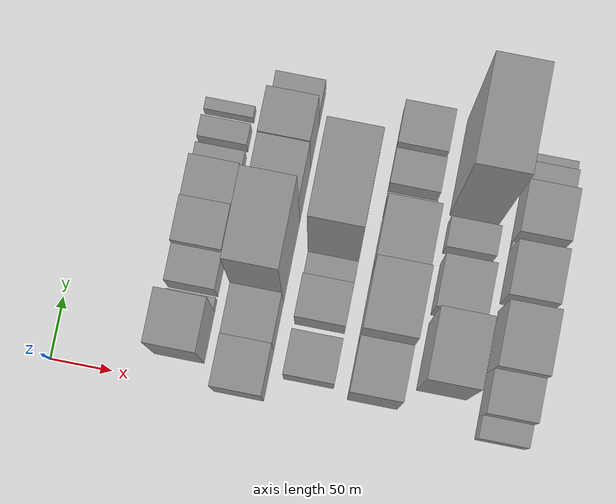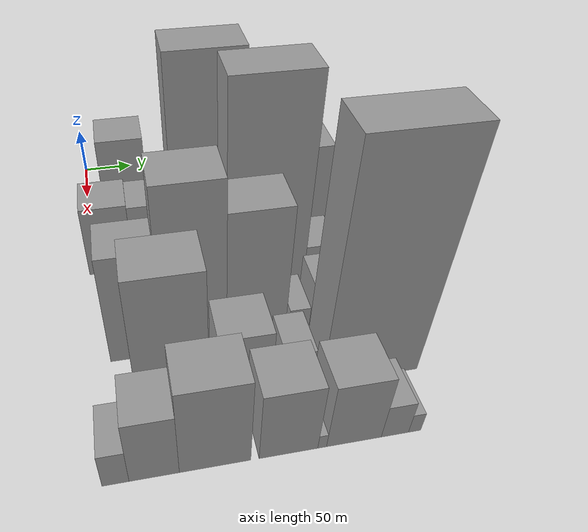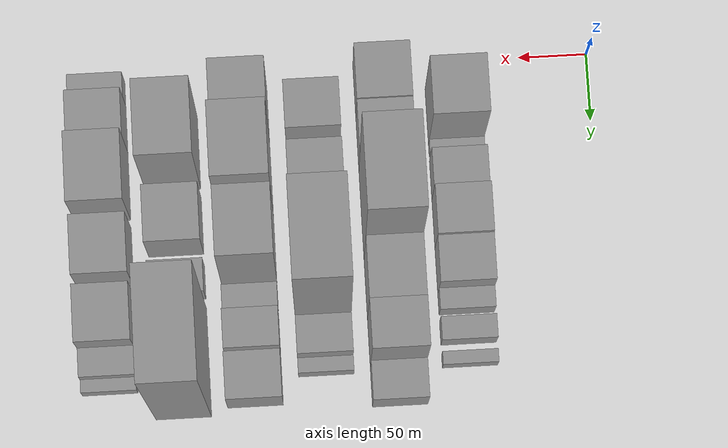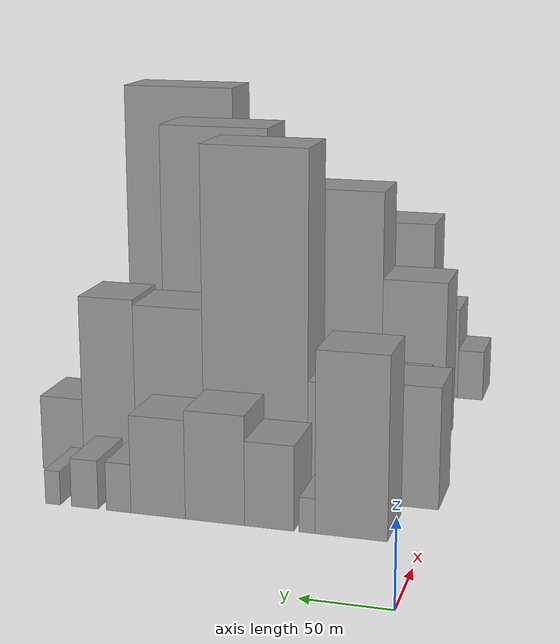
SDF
<sdf version="1.6">
 <world name="default">
  <model name="building_27">
   <static>1</static>
   <pose>100.0000 40.7392 0 0.000000 0.000000 0.000000</pose>
   <link name="link">
    <pose>0 0 54.00 0 0 0</pose>
    <collision name="collision"><geometry><box><size>40.0000 41.7065 108.0000</size></box></geometry></collision>
    <visual name="visual">
     <cast_shadows>0</cast_shadows>
     <geometry><box><size>40.0000 41.7065 108.0000</size></box></geometry>
     <material>
      <script>
       <uri>model://grey_wall/materials/scripts</uri>
       <uri>model://grey_wall/materials/textures</uri>
       <name>vrc/grey_wall</name>
      </script>
     </material>
    </visual>
   </link>
  </model>
  <model name="building_28">
   <static>1</static>
   <pose>100.0000 66.1730 0 0.000000 0.000000 0.000000</pose>
   <link name="link">
    <pose>0 0 10.50 0 0 0</pose>
    <collision name="collision"><geometry><box><size>40.0000 9.1613 21.0000</size></box></geometry></collision>
    <visual name="visual">
     <cast_shadows>0</cast_shadows>
     <geometry><box><size>40.0000 9.1613 21.0000</size></box></geometry>
     <material>
      <script>
       <uri>model://grey_wall/materials/scripts</uri>
       <uri>model://grey_wall/materials/textures</uri>
       <name>vrc/grey_wall</name>
      </script>
     </material>
    </visual>
   </link>
  </model>
  <model name="building_29">
   <static>1</static>
   <pose>100.0000 88.3548 0 0.000000 0.000000 0.000000</pose>
   <link name="link">
    <pose>0 0 25.50 0 0 0</pose>
    <collision name="collision"><geometry><box><size>40.0000 29.2023 51.0000</size></box></geometry></collision>
    <visual name="visual">
     <cast_shadows>0</cast_shadows>
     <geometry><box><size>40.0000 29.2023 51.0000</size></box></geometry>
     <material>
      <script>
       <uri>model://grey_wall/materials/scripts</uri>
       <uri>model://grey_wall/materials/textures</uri>
       <name>vrc/grey_wall</name>
      </script>
     </material>
    </visual>
   </link>
  </model>
  <model name="building_30">
   <static>1</static>
   <pose>100.0000 120.8287 0 0.000000 0.000000 0.000000</pose>
   <link name="link">
    <pose>0 0 33.00 0 0 0</pose>
    <collision name="collision"><geometry><box><size>40.0000 35.7455 66.0000</size></box></geometry></collision>
    <visual name="visual">
     <cast_shadows>0</cast_shadows>
     <geometry><box><size>40.0000 35.7455 66.0000</size></box></geometry>
     <material>
      <script>
       <uri>model://grey_wall/materials/scripts</uri>
       <uri>model://grey_wall/materials/textures</uri>
       <name>vrc/grey_wall</name>
      </script>
     </material>
    </visual>
   </link>
  </model>
  <model name="building_31">
   <static>1</static>
   <pose>100.0000 155.4661 0 0.000000 0.000000 0.000000</pose>
   <link name="link">
    <pose>0 0 30.00 0 0 0</pose>
    <collision name="collision"><geometry><box><size>40.0000 33.5295 60.0000</size></box></geometry></collision>
    <visual name="visual">
     <cast_shadows>0</cast_shadows>
     <geometry><box><size>40.0000 33.5295 60.0000</size></box></geometry>
     <material>
      <script>
       <uri>model://grey_wall/materials/scripts</uri>
       <uri>model://grey_wall/materials/textures</uri>
       <name>vrc/grey_wall</name>
      </script>
     </material>
    </visual>
   </link>
  </model>
  <model name="building_32">
   <static>1</static>
   <pose>100.0000 179.9575 0 0.000000 0.000000 0.000000</pose>
   <link name="link">
    <pose>0 0 15.00 0 0 0</pose>
    <collision name="collision"><geometry><box><size>40.0000 15.4532 30.0000</size></box></geometry></collision>
    <visual name="visual">
     <cast_shadows>0</cast_shadows>
     <geometry><box><size>40.0000 15.4532 30.0000</size></box></geometry>
     <material>
      <script>
       <uri>model://grey_wall/materials/scripts</uri>
       <uri>model://grey_wall/materials/textures</uri>
       <name>vrc/grey_wall</name>
      </script>
     </material>
    </visual>
   </link>
  </model>
  <model name="building_33">
   <static>1</static>
   <pose>100.0000 201.2121 0 0.000000 0.000000 0.000000</pose>
   <link name="link">
    <pose>0 0 15.00 0 0 0</pose>
    <collision name="collision"><geometry><box><size>40.0000 17.0561 30.0000</size></box></geometry></collision>
    <visual name="visual">
     <cast_shadows>0</cast_shadows>
     <geometry><box><size>40.0000 17.0561 30.0000</size></box></geometry>
     <material>
      <script>
       <uri>model://grey_wall/materials/scripts</uri>
       <uri>model://grey_wall/materials/textures</uri>
       <name>vrc/grey_wall</name>
      </script>
     </material>
    </visual>
   </link>
  </model>
  <model name="building_34">
   <static>1</static>
   <pose>100.0000 221.5178 0 0.000000 0.000000 0.000000</pose>
   <link name="link">
    <pose>0 0 10.50 0 0 0</pose>
    <collision name="collision"><geometry><box><size>40.0000 9.5552 21.0000</size></box></geometry></collision>
    <visual name="visual">
     <cast_shadows>0</cast_shadows>
     <geometry><box><size>40.0000 9.5552 21.0000</size></box></geometry>
     <material>
      <script>
       <uri>model://grey_wall/materials/scripts</uri>
       <uri>model://grey_wall/materials/textures</uri>
       <name>vrc/grey_wall</name>
      </script>
     </material>
    </visual>
   </link>
  </model>
  <model name="building_82">
   <static>1</static>
   <pose>152.0000 20.0602 0 0.000000 0.000000 0.000000</pose>
   <link name="link">
    <pose>0 0 37.50 0 0 0</pose>
    <collision name="collision"><geometry><box><size>40.0000 40.3486 75.0000</size></box></geometry></collision>
    <visual name="visual">
     <cast_shadows>0</cast_shadows>
     <geometry><box><size>40.0000 40.3486 75.0000</size></box></geometry>
     <material>
      <script>
       <uri>model://grey_wall/materials/scripts</uri>
       <uri>model://grey_wall/materials/textures</uri>
       <name>vrc/grey_wall</name>
      </script>
     </material>
    </visual>
   </link>
  </model>
  <model name="building_83">
   <static>1</static>
   <pose>152.0000 59.7744 0 0.000000 0.000000 0.000000</pose>
   <link name="link">
    <pose>0 0 36.00 0 0 0</pose>
    <collision name="collision"><geometry><box><size>40.0000 39.0799 72.0000</size></box></geometry></collision>
    <visual name="visual">
     <cast_shadows>0</cast_shadows>
     <geometry><box><size>40.0000 39.0799 72.0000</size></box></geometry>
     <material>
      <script>
       <uri>model://grey_wall/materials/scripts</uri>
       <uri>model://grey_wall/materials/textures</uri>
       <name>vrc/grey_wall</name>
      </script>
     </material>
    </visual>
   </link>
  </model>
  <model name="building_84">
   <static>1</static>
   <pose>152.0000 112.0152 0 0.000000 0.000000 0.000000</pose>
   <link name="link">
    <pose>0 0 105.00 0 0 0</pose>
    <collision name="collision"><geometry><box><size>40.0000 65.4018 210.0000</size></box></geometry></collision>
    <visual name="visual">
     <cast_shadows>0</cast_shadows>
     <geometry><box><size>40.0000 65.4018 210.0000</size></box></geometry>
     <material>
      <script>
       <uri>model://grey_wall/materials/scripts</uri>
       <uri>model://grey_wall/materials/textures</uri>
       <name>vrc/grey_wall</name>
      </script>
     </material>
    </visual>
   </link>
  </model>
  <model name="building_85">
   <static>1</static>
   <pose>152.0000 166.7514 0 0.000000 0.000000 0.000000</pose>
   <link name="link">
    <pose>0 0 55.50 0 0 0</pose>
    <collision name="collision"><geometry><box><size>40.0000 44.0705 111.0000</size></box></geometry></collision>
    <visual name="visual">
     <cast_shadows>0</cast_shadows>
     <geometry><box><size>40.0000 44.0705 111.0000</size></box></geometry>
     <material>
      <script>
       <uri>model://grey_wall/materials/scripts</uri>
       <uri>model://grey_wall/materials/textures</uri>
       <name>vrc/grey_wall</name>
      </script>
     </material>
    </visual>
   </link>
  </model>
  <model name="building_86">
   <static>1</static>
   <pose>152.0000 206.3000 0 0.000000 0.000000 0.000000</pose>
   <link name="link">
    <pose>0 0 57.00 0 0 0</pose>
    <collision name="collision"><geometry><box><size>40.0000 35.0266 114.0000</size></box></geometry></collision>
    <visual name="visual">
     <cast_shadows>0</cast_shadows>
     <geometry><box><size>40.0000 35.0266 114.0000</size></box></geometry>
     <material>
      <script>
       <uri>model://grey_wall/materials/scripts</uri>
       <uri>model://grey_wall/materials/textures</uri>
       <name>vrc/grey_wall</name>
      </script>
     </material>
    </visual>
   </link>
  </model>
  <model name="building_87">
   <static>1</static>
   <pose>152.0000 237.8095 0 0.000000 0.000000 0.000000</pose>
   <link name="link">
    <pose>0 0 24.00 0 0 0</pose>
    <collision name="collision"><geometry><box><size>40.0000 27.9924 48.0000</size></box></geometry></collision>
    <visual name="visual">
     <cast_shadows>0</cast_shadows>
     <geometry><box><size>40.0000 27.9924 48.0000</size></box></geometry>
     <material>
      <script>
       <uri>model://grey_wall/materials/scripts</uri>
       <uri>model://grey_wall/materials/textures</uri>
       <name>vrc/grey_wall</name>
      </script>
     </material>
    </visual>
   </link>
  </model>
  <model name="building_136">
   <static>1</static>
   <pose>204.0000 37.8370 0 0.000000 0.000000 0.000000</pose>
   <link name="link">
    <pose>0 0 30.00 0 0 0</pose>
    <collision name="collision"><geometry><box><size>40.0000 35.3601 60.0000</size></box></geometry></collision>
    <visual name="visual">
     <cast_shadows>0</cast_shadows>
     <geometry><box><size>40.0000 35.3601 60.0000</size></box></geometry>
     <material>
      <script>
       <uri>model://grey_wall/materials/scripts</uri>
       <uri>model://grey_wall/materials/textures</uri>
       <name>vrc/grey_wall</name>
      </script>
     </material>
    </visual>
   </link>
  </model>
  <model name="building_137">
   <static>1</static>
   <pose>204.0000 81.4466 0 0.000000 0.000000 0.000000</pose>
   <link name="link">
    <pose>0 0 31.50 0 0 0</pose>
    <collision name="collision"><geometry><box><size>40.0000 33.8591 63.0000</size></box></geometry></collision>
    <visual name="visual">
     <cast_shadows>0</cast_shadows>
     <geometry><box><size>40.0000 33.8591 63.0000</size></box></geometry>
     <material>
      <script>
       <uri>model://grey_wall/materials/scripts</uri>
       <uri>model://grey_wall/materials/textures</uri>
       <name>vrc/grey_wall</name>
      </script>
     </material>
    </visual>
   </link>
  </model>
  <model name="building_138">
   <static>1</static>
   <pose>204.0000 108.4858 0 0.000000 0.000000 0.000000</pose>
   <link name="link">
    <pose>0 0 18.00 0 0 0</pose>
    <collision name="collision"><geometry><box><size>40.0000 20.2193 36.0000</size></box></geometry></collision>
    <visual name="visual">
     <cast_shadows>0</cast_shadows>
     <geometry><box><size>40.0000 20.2193 36.0000</size></box></geometry>
     <material>
      <script>
       <uri>model://grey_wall/materials/scripts</uri>
       <uri>model://grey_wall/materials/textures</uri>
       <name>vrc/grey_wall</name>
      </script>
     </material>
    </visual>
   </link>
  </model>
  <model name="building_139">
   <static>1</static>
   <pose>204.0000 153.5786 0 0.000000 0.000000 0.000000</pose>
   <link name="link">
    <pose>0 0 106.50 0 0 0</pose>
    <collision name="collision"><geometry><box><size>40.0000 69.9663 213.0000</size></box></geometry></collision>
    <visual name="visual">
     <cast_shadows>0</cast_shadows>
     <geometry><box><size>40.0000 69.9663 213.0000</size></box></geometry>
     <material>
      <script>
       <uri>model://grey_wall/materials/scripts</uri>
       <uri>model://grey_wall/materials/textures</uri>
       <name>vrc/grey_wall</name>
      </script>
     </material>
    </visual>
   </link>
  </model>
  <model name="building_140">
   <static>1</static>
   <pose>204.0000 202.3532 0 0.000000 0.000000 0.000000</pose>
   <link name="link">
    <pose>0 0 24.00 0 0 0</pose>
    <collision name="collision"><geometry><box><size>40.0000 27.5829 48.0000</size></box></geometry></collision>
    <visual name="visual">
     <cast_shadows>0</cast_shadows>
     <geometry><box><size>40.0000 27.5829 48.0000</size></box></geometry>
     <material>
      <script>
       <uri>model://grey_wall/materials/scripts</uri>
       <uri>model://grey_wall/materials/textures</uri>
       <name>vrc/grey_wall</name>
      </script>
     </material>
    </visual>
   </link>
  </model>
  <model name="building_141">
   <static>1</static>
   <pose>204.0000 221.6081 0 0.000000 0.000000 0.000000</pose>
   <link name="link">
    <pose>0 0 12.00 0 0 0</pose>
    <collision name="collision"><geometry><box><size>40.0000 10.9268 24.0000</size></box></geometry></collision>
    <visual name="visual">
     <cast_shadows>0</cast_shadows>
     <geometry><box><size>40.0000 10.9268 24.0000</size></box></geometry>
     <material>
      <script>
       <uri>model://grey_wall/materials/scripts</uri>
       <uri>model://grey_wall/materials/textures</uri>
       <name>vrc/grey_wall</name>
      </script>
     </material>
    </visual>
   </link>
  </model>
  <model name="building_187">
   <static>1</static>
   <pose>256.0000 35.0036 0 0.000000 0.000000 0.000000</pose>
   <link name="link">
    <pose>0 0 55.50 0 0 0</pose>
    <collision name="collision"><geometry><box><size>40.0000 42.2785 111.0000</size></box></geometry></collision>
    <visual name="visual">
     <cast_shadows>0</cast_shadows>
     <geometry><box><size>40.0000 42.2785 111.0000</size></box></geometry>
     <material>
      <script>
       <uri>model://grey_wall/materials/scripts</uri>
       <uri>model://grey_wall/materials/textures</uri>
       <name>vrc/grey_wall</name>
      </script>
     </material>
    </visual>
   </link>
  </model>
  <model name="building_188">
   <static>1</static>
   <pose>256.0000 82.3636 0 0.000000 0.000000 0.000000</pose>
   <link name="link">
    <pose>0 0 84.00 0 0 0</pose>
    <collision name="collision"><geometry><box><size>40.0000 52.4415 168.0000</size></box></geometry></collision>
    <visual name="visual">
     <cast_shadows>0</cast_shadows>
     <geometry><box><size>40.0000 52.4415 168.0000</size></box></geometry>
     <material>
      <script>
       <uri>model://grey_wall/materials/scripts</uri>
       <uri>model://grey_wall/materials/textures</uri>
       <name>vrc/grey_wall</name>
      </script>
     </material>
    </visual>
   </link>
  </model>
  <model name="building_189">
   <static>1</static>
   <pose>256.0000 133.2776 0 0.000000 0.000000 0.000000</pose>
   <link name="link">
    <pose>0 0 69.00 0 0 0</pose>
    <collision name="collision"><geometry><box><size>40.0000 49.3865 138.0000</size></box></geometry></collision>
    <visual name="visual">
     <cast_shadows>0</cast_shadows>
     <geometry><box><size>40.0000 49.3865 138.0000</size></box></geometry>
     <material>
      <script>
       <uri>model://grey_wall/materials/scripts</uri>
       <uri>model://grey_wall/materials/textures</uri>
       <name>vrc/grey_wall</name>
      </script>
     </material>
    </visual>
   </link>
  </model>
  <model name="building_190">
   <static>1</static>
   <pose>256.0000 169.6329 0 0.000000 0.000000 0.000000</pose>
   <link name="link">
    <pose>0 0 15.00 0 0 0</pose>
    <collision name="collision"><geometry><box><size>40.0000 17.3240 30.0000</size></box></geometry></collision>
    <visual name="visual">
     <cast_shadows>0</cast_shadows>
     <geometry><box><size>40.0000 17.3240 30.0000</size></box></geometry>
     <material>
      <script>
       <uri>model://grey_wall/materials/scripts</uri>
       <uri>model://grey_wall/materials/textures</uri>
       <name>vrc/grey_wall</name>
      </script>
     </material>
    </visual>
   </link>
  </model>
  <model name="building_191">
   <static>1</static>
   <pose>256.0000 195.4811 0 0.000000 0.000000 0.000000</pose>
   <link name="link">
    <pose>0 0 25.50 0 0 0</pose>
    <collision name="collision"><geometry><box><size>40.0000 28.3725 51.0000</size></box></geometry></collision>
    <visual name="visual">
     <cast_shadows>0</cast_shadows>
     <geometry><box><size>40.0000 28.3725 51.0000</size></box></geometry>
     <material>
      <script>
       <uri>model://grey_wall/materials/scripts</uri>
       <uri>model://grey_wall/materials/textures</uri>
       <name>vrc/grey_wall</name>
      </script>
     </material>
    </visual>
   </link>
  </model>
  <model name="building_192">
   <static>1</static>
   <pose>256.0000 229.7420 0 0.000000 0.000000 0.000000</pose>
   <link name="link">
    <pose>0 0 28.50 0 0 0</pose>
    <collision name="collision"><geometry><box><size>40.0000 34.1493 57.0000</size></box></geometry></collision>
    <visual name="visual">
     <cast_shadows>0</cast_shadows>
     <geometry><box><size>40.0000 34.1493 57.0000</size></box></geometry>
     <material>
      <script>
       <uri>model://grey_wall/materials/scripts</uri>
       <uri>model://grey_wall/materials/textures</uri>
       <name>vrc/grey_wall</name>
      </script>
     </material>
    </visual>
   </link>
  </model>
  <model name="building_233">
   <static>1</static>
   <pose>308.0000 58.5841 0 0.000000 0.000000 0.000000</pose>
   <link name="link">
    <pose>0 0 69.00 0 0 0</pose>
    <collision name="collision"><geometry><box><size>40.0000 53.7640 138.0000</size></box></geometry></collision>
    <visual name="visual">
     <cast_shadows>0</cast_shadows>
     <geometry><box><size>40.0000 53.7640 138.0000</size></box></geometry>
     <material>
      <script>
       <uri>model://grey_wall/materials/scripts</uri>
       <uri>model://grey_wall/materials/textures</uri>
       <name>vrc/grey_wall</name>
      </script>
     </material>
    </visual>
   </link>
  </model>
  <model name="building_234">
   <static>1</static>
   <pose>308.0000 113.0560 0 0.000000 0.000000 0.000000</pose>
   <link name="link">
    <pose>0 0 34.50 0 0 0</pose>
    <collision name="collision"><geometry><box><size>40.0000 41.1797 69.0000</size></box></geometry></collision>
    <visual name="visual">
     <cast_shadows>0</cast_shadows>
     <geometry><box><size>40.0000 41.1797 69.0000</size></box></geometry>
     <material>
      <script>
       <uri>model://grey_wall/materials/scripts</uri>
       <uri>model://grey_wall/materials/textures</uri>
       <name>vrc/grey_wall</name>
      </script>
     </material>
    </visual>
   </link>
  </model>
  <model name="building_235">
   <static>1</static>
   <pose>308.0000 154.7117 0 0.000000 0.000000 0.000000</pose>
   <link name="link">
    <pose>0 0 21.00 0 0 0</pose>
    <collision name="collision"><geometry><box><size>40.0000 24.1318 42.0000</size></box></geometry></collision>
    <visual name="visual">
     <cast_shadows>0</cast_shadows>
     <geometry><box><size>40.0000 24.1318 42.0000</size></box></geometry>
     <material>
      <script>
       <uri>model://grey_wall/materials/scripts</uri>
       <uri>model://grey_wall/materials/textures</uri>
       <name>vrc/grey_wall</name>
      </script>
     </material>
    </visual>
   </link>
  </model>
  <model name="building_236">
   <static>1</static>
   <pose>308.0000 213.1445 0 0.000000 0.000000 0.000000</pose>
   <link name="link">
    <pose>0 0 112.50 0 0 0</pose>
    <collision name="collision"><geometry><box><size>40.0000 78.7338 225.0000</size></box></geometry></collision>
    <visual name="visual">
     <cast_shadows>0</cast_shadows>
     <geometry><box><size>40.0000 78.7338 225.0000</size></box></geometry>
     <material>
      <script>
       <uri>model://grey_wall/materials/scripts</uri>
       <uri>model://grey_wall/materials/textures</uri>
       <name>vrc/grey_wall</name>
      </script>
     </material>
    </visual>
   </link>
  </model>
  <model name="building_275">
   <static>1</static>
   <pose>360.0000 11.7062 0 0.000000 0.000000 0.000000</pose>
   <link name="link">
    <pose>0 0 18.00 0 0 0</pose>
    <collision name="collision"><geometry><box><size>40.0000 18.2458 36.0000</size></box></geometry></collision>
    <visual name="visual">
     <cast_shadows>0</cast_shadows>
     <geometry><box><size>40.0000 18.2458 36.0000</size></box></geometry>
     <material>
      <script>
       <uri>model://grey_wall/materials/scripts</uri>
       <uri>model://grey_wall/materials/textures</uri>
       <name>vrc/grey_wall</name>
      </script>
     </material>
    </visual>
   </link>
  </model>
  <model name="building_276">
   <static>1</static>
   <pose>360.0000 38.0789 0 0.000000 0.000000 0.000000</pose>
   <link name="link">
    <pose>0 0 33.00 0 0 0</pose>
    <collision name="collision"><geometry><box><size>40.0000 34.4997 66.0000</size></box></geometry></collision>
    <visual name="visual">
     <cast_shadows>0</cast_shadows>
     <geometry><box><size>40.0000 34.4997 66.0000</size></box></geometry>
     <material>
      <script>
       <uri>model://grey_wall/materials/scripts</uri>
       <uri>model://grey_wall/materials/textures</uri>
       <name>vrc/grey_wall</name>
      </script>
     </material>
    </visual>
   </link>
  </model>
  <model name="building_277">
   <static>1</static>
   <pose>360.0000 80.4958 0 0.000000 0.000000 0.000000</pose>
   <link name="link">
    <pose>0 0 45.00 0 0 0</pose>
    <collision name="collision"><geometry><box><size>40.0000 50.3342 90.0000</size></box></geometry></collision>
    <visual name="visual">
     <cast_shadows>0</cast_shadows>
     <geometry><box><size>40.0000 50.3342 90.0000</size></box></geometry>
     <material>
      <script>
       <uri>model://grey_wall/materials/scripts</uri>
       <uri>model://grey_wall/materials/textures</uri>
       <name>vrc/grey_wall</name>
      </script>
     </material>
    </visual>
   </link>
  </model>
  <model name="building_278">
   <static>1</static>
   <pose>360.0000 133.0283 0 0.000000 0.000000 0.000000</pose>
   <link name="link">
    <pose>0 0 36.00 0 0 0</pose>
    <collision name="collision"><geometry><box><size>40.0000 42.7307 72.0000</size></box></geometry></collision>
    <visual name="visual">
     <cast_shadows>0</cast_shadows>
     <geometry><box><size>40.0000 42.7307 72.0000</size></box></geometry>
     <material>
      <script>
       <uri>model://grey_wall/materials/scripts</uri>
       <uri>model://grey_wall/materials/textures</uri>
       <name>vrc/grey_wall</name>
      </script>
     </material>
    </visual>
   </link>
  </model>
  <model name="building_279">
   <static>1</static>
   <pose>360.0000 157.6292 0 0.000000 0.000000 0.000000</pose>
   <link name="link">
    <pose>0 0 7.50 0 0 0</pose>
    <collision name="collision"><geometry><box><size>40.0000 6.4711 15.0000</size></box></geometry></collision>
    <visual name="visual">
     <cast_shadows>0</cast_shadows>
     <geometry><box><size>40.0000 6.4711 15.0000</size></box></geometry>
     <material>
      <script>
       <uri>model://grey_wall/materials/scripts</uri>
       <uri>model://grey_wall/materials/textures</uri>
       <name>vrc/grey_wall</name>
      </script>
     </material>
    </visual>
   </link>
  </model>
  <model name="building_280">
   <static>1</static>
   <pose>360.0000 181.4604 0 0.000000 0.000000 0.000000</pose>
   <link name="link">
    <pose>0 0 34.50 0 0 0</pose>
    <collision name="collision"><geometry><box><size>40.0000 41.1912 69.0000</size></box></geometry></collision>
    <visual name="visual">
     <cast_shadows>0</cast_shadows>
     <geometry><box><size>40.0000 41.1912 69.0000</size></box></geometry>
     <material>
      <script>
       <uri>model://grey_wall/materials/scripts</uri>
       <uri>model://grey_wall/materials/textures</uri>
       <name>vrc/grey_wall</name>
      </script>
     </material>
    </visual>
   </link>
  </model>
  <model name="building_281">
   <static>1</static>
   <pose>360.0000 212.4728 0 0.000000 0.000000 0.000000</pose>
   <link name="link">
    <pose>0 0 18.00 0 0 0</pose>
    <collision name="collision"><geometry><box><size>40.0000 20.8337 36.0000</size></box></geometry></collision>
    <visual name="visual">
     <cast_shadows>0</cast_shadows>
     <geometry><box><size>40.0000 20.8337 36.0000</size></box></geometry>
     <material>
      <script>
       <uri>model://grey_wall/materials/scripts</uri>
       <uri>model://grey_wall/materials/textures</uri>
       <name>vrc/grey_wall</name>
      </script>
     </material>
    </visual>
   </link>
  </model>
  <model name="building_282">
   <static>1</static>
   <pose>360.0000 227.6609 0 0.000000 0.000000 0.000000</pose>
   <link name="link">
    <pose>0 0 10.50 0 0 0</pose>
    <collision name="collision"><geometry><box><size>40.0000 9.5425 21.0000</size></box></geometry></collision>
    <visual name="visual">
     <cast_shadows>0</cast_shadows>
     <geometry><box><size>40.0000 9.5425 21.0000</size></box></geometry>
     <material>
      <script>
       <uri>model://grey_wall/materials/scripts</uri>
       <uri>model://grey_wall/materials/textures</uri>
       <name>vrc/grey_wall</name>
      </script>
     </material>
    </visual>
   </link>
  </model>
 </world>
</sdf>
